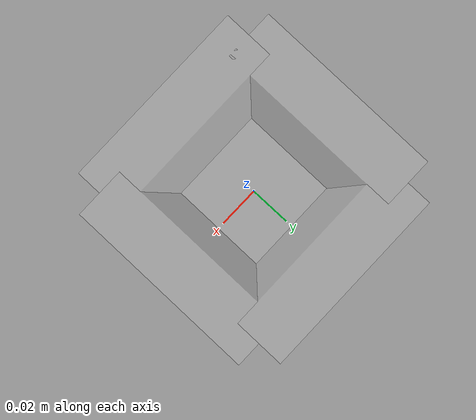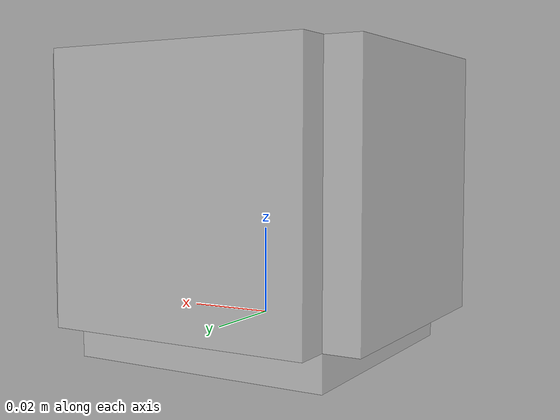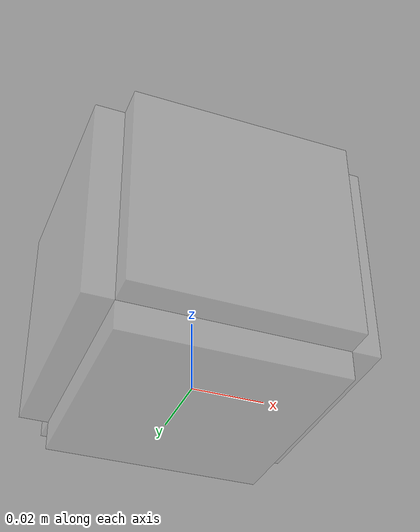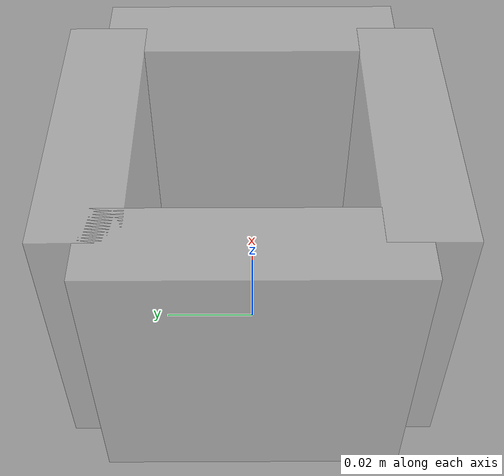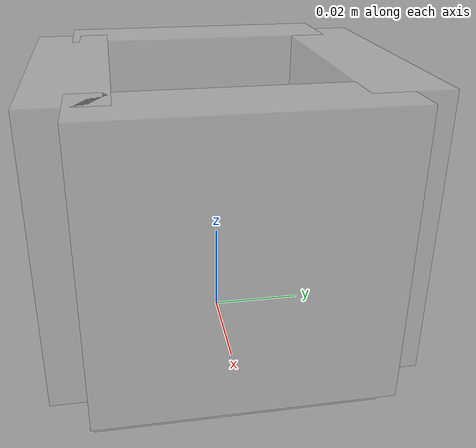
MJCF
<mujoco model="hollowbox-visual">
  <worldbody>
    <body>

      <body name="object">
        <geom pos="0 0 0" size="0.03 0.03 0.008" type="box" conaffinity="0" contype="0" group="1" mass="0.0001" rgba="0.8 0.8 0.8 0.3"/>
        <geom pos="0 0.03 0.03" size="0.03 0.008 0.03" type="box" conaffinity="0" contype="0" group="1"  mass="0.0001" rgba="0.8 0.8 0.8 0.3"/>
        <geom pos="0.03 0 0.03" size="0.008 0.03 0.03" type="box" conaffinity="0" contype="0" group="1" mass="0.0001"  rgba="0.8 0.8 0.8 0.3"/>
        <geom pos="0 -0.03 0.03" size="0.03 0.008 0.03" type="box" conaffinity="0" contype="0" group="1"  mass="0.0001"  rgba="0.8 0.8 0.8 0.3"/>
        <geom pos="-0.03 0 0.03" size="0.008 0.03 0.03" type="box" conaffinity="0" contype="0" group="1" mass="0.0001" rgba="0.8 0.8 0.8 0.3"/>
      </body>

      <site rgba="0 0 0 0" size="0.001" pos="0 0 -0.008" name="bottom_site"/>
      <site rgba="0 0 0 0" size="0.001" pos="0 0 0.068" name="top_site"/>
      <site rgba="0 0 0 0" size="0.001" pos="0.038 0.038 0" name="horizontal_radius_site"/>
    </body>
  </worldbody>
</mujoco>
